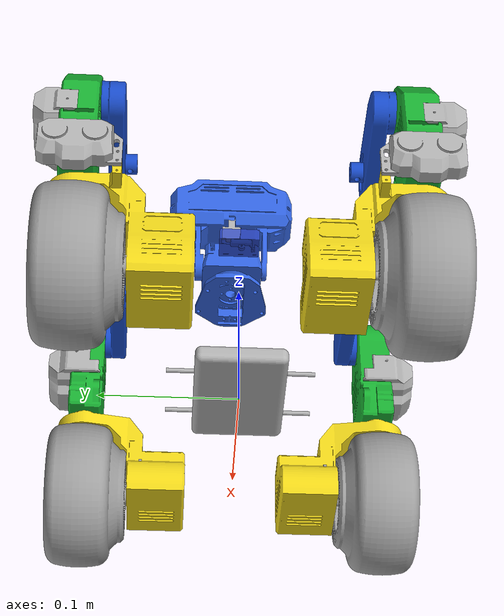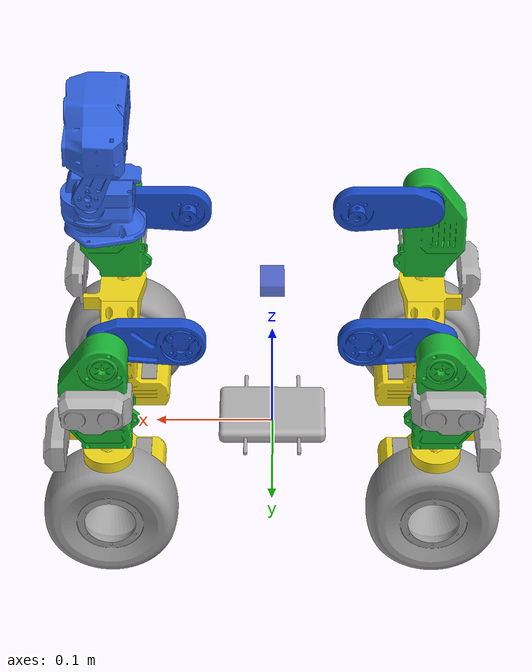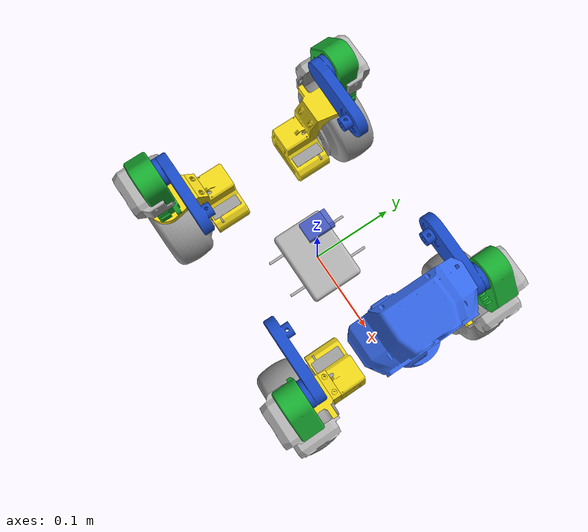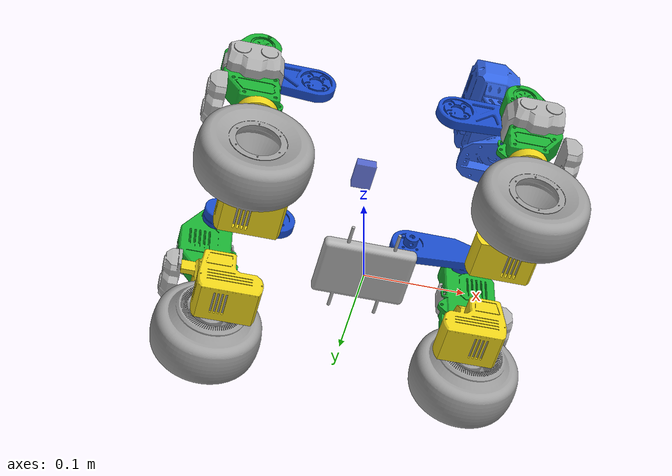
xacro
<?xml version="1.0"?>
<!-- 使用方法：由 robot_description/description.launch.py 展开并发布完整机器人模型。 -->
<robot name="robot" xmlns:xacro="http://www.ros.org/wiki/xacro">

  <!-- mode 只决定 ros2_control 插件；模型、关节和控制接口保持完全一致。 -->
  <xacro:arg name="hardware_plugin" default="mock_components/GenericSystem"/>
  <xacro:arg name="servo_calibration_file" default=""/>
  <xacro:arg name="wheel_calibration_file" default=""/>
  <xacro:arg name="device_candidates" default="/dev/ttyACM0,/dev/ttyACM1,/dev/ttyACM2"/>
  <xacro:arg name="serial_timeout_ms" default="500"/>
  <xacro:arg name="inter_command_delay_ms" default="3"/>
  <xacro:arg name="discovery_retry_count" default="20"/>
  <xacro:arg name="discovery_retry_delay_ms" default="700"/>
  <xacro:arg name="encoder_query_delay_ms" default="20"/>
  <xacro:arg name="command_timeout_ms" default="500"/>
  <xacro:arg name="wheel_diameter" default="0.110"/>
  <xacro:arg name="sonar_lpf_alpha" default="0.2"/>
  <xacro:arg name="sonar_min_valid_mm" default="30"/>
  <xacro:arg name="sonar_max_valid_mm" default="2500"/>

  <!-- 引入xacro文件 -->
  <xacro:include filename="materials.xacro"/>
  <xacro:include filename="lap.xacro"/>
  <xacro:include filename="shin.xacro"/>
  <xacro:include filename="motor.xacro"/>
  <xacro:include filename="wheel.xacro"/>
  <xacro:include filename="radar-front.xacro"/>
  <xacro:include filename="radar-side.xacro"/>
  <xacro:include filename="sonar.xacro"/>
  <xacro:include filename="imu.xacro"/>
  <xacro:include filename="stereo_camera.xacro"/>
  <xacro:include filename="head.xacro"/>
  <xacro:include filename="hardware.xacro"/>

  <!-- 新增：动态获取robot包的绝对路径（核心！） -->
  <xacro:property name="pkg_path" value="$(find robot_description)"/>

  <!-- 基础连杆（作为机器人根节点） -->
  <link name="base_link">
    <!-- 为base_link添加简单可视化（方便在RViz中定位） -->
    <visual>
      <origin xyz="0 0 0" rpy="0 0 0"/>
      <geometry>
        <box size="0 0 0"/> <!-- 小方块作为base_link可视化 -->
      </geometry>
      <xacro:get_material_by_name material_name="pla_gray_light"/>
    </visual>
  </link>

  <!-- 身体链接（保留核心可视化、碰撞、惯性，移除gazebo标签） -->
  <link name="body">
    <!-- 视觉属性 -->
    <visual>
      <origin xyz="0 0 0" rpy="0 0 0"/>
      <geometry>
        <mesh filename="package://robot_description/meshes/body.obj"
              scale="0.001 0.001 0.001"/>
      </geometry>
      <xacro:get_material_by_name material_name="pla_gray_light"/>
    </visual>

    <!-- 碰撞属性（保留，不影响可视化，仅为完整性） -->
    <collision>
      <origin xyz="0 0 0" rpy="0 0 0"/>
      <geometry>
        <mesh filename="package://robot_description/meshes/body.obj"
              scale="0.001 0.001 0.001"/>
      </geometry>
    </collision>

    <!-- 惯性属性（保留，不影响可视化，仅为完整性） -->
    <inertial>
      <origin xyz="0 0 0" rpy="0 0 0"/>
      <mass value="1.0"/>
      <inertia ixx="0.001" ixy="0.0" ixz="0.0"
               iyy="0.001" iyz="0.0"
               izz="0.001"/>
    </inertial>
  </link>

  <!-- 底盘与身体的固定关节（保留） -->
  <joint name="base_body_joint" type="fixed">
    <origin xyz="0 0 0" rpy="0 0 ${pi/2}"/>
    <parent link="base_link"/>
    <child link="body"/>
  </joint>

  <!-- 大腿部分（保留所有lap宏调用，确保关节可被GUI控制） -->
  <!-- 右前大腿 - 原样 -->
  <xacro:lap suffix="fr"
             parent_link="body"
             lower="${-pi/6}" upper="${pi/6}"
             xyz="-0.091 -0.072 0.158"
             rpy="0 0 0"
             mesh_scale="0.001 0.001 0.001"/>

  <!-- 左前大腿 - Y轴镜像 -->
  <xacro:lap suffix="fl"
             parent_link="body"
             lower="${-pi/6}" upper="${pi/6}"
             xyz="0.091 -0.072 0.158"
             rpy="0 0 0"
             mesh_scale="-0.001 0.001 0.001"/> <!-- Y轴镜像 -->

  <!-- 右后大腿 - X轴镜像 -->
  <xacro:lap suffix="rr"
             parent_link="body"
             lower="${-pi/6}" upper="${pi/6}"
             xyz="-0.091 0.072 0.158"
             rpy="0 0 0"
             mesh_scale="0.001 -0.001 0.001"/> <!-- X轴镜像 -->

  <!-- 左后大腿 - X和Y轴都镜像 -->
  <xacro:lap suffix="rl"
             parent_link="body"
             lower="${-pi/6}" upper="${pi/6}"
             xyz="0.091 0.072 0.158"
             rpy="0 0 0"
             mesh_scale="-0.001 -0.001 0.001"/> <!-- X和Y轴镜像 -->

  <!-- 小腿部分 -->
  <!-- 右前小腿 -->
  <xacro:shin suffix="fr"
              parent_link="lap_fr"
              mimic_joint="lap_body_joint_fr"
              xyz="-0.017 -0.060 0"
              rpy="0 0 0"
              mesh_scale="0.001 0.001 0.001"/>

  <!-- 左前小腿（Y轴镜像） -->
  <xacro:shin suffix="fl"
              parent_link="lap_fl"
              mimic_joint="lap_body_joint_fl"
              xyz="0.017 -0.060 0"
              rpy="0 0 0"
              mesh_scale="-0.001 0.001 0.001"/>

  <!-- 右后小腿（X轴镜像） -->
  <xacro:shin suffix="rr"
              parent_link="lap_rr"
              mimic_joint="lap_body_joint_rr"
              xyz="-0.017 0.060 0"
              rpy="0 0 0"
              mesh_scale="0.001 -0.001 0.001"/>

  <!-- 左后小腿（X和Y轴镜像） -->
  <xacro:shin suffix="rl"
              parent_link="lap_rl"
              mimic_joint="lap_body_joint_rl"
              xyz="0.017 0.060 0"
              rpy="0 0 0"
              mesh_scale="-0.001 -0.001 0.001"/>

  <!-- 转向部分 -->
  <xacro:motor suffix="fr"
              parent_link="shin_fr"
              joint_position="front_right"
              xyz="-0.008 0 -0.069"
              rpy="0 0 0"
              mesh_scale="0.001 0.001 0.001"/>
  <xacro:motor suffix="fl"
              parent_link="shin_fl"
              joint_position="front_left"
              xyz="0.008 0 -0.069"
              rpy="0 0 0"
              mesh_scale="-0.001 0.001 0.001"/>
  <xacro:motor suffix="rr"
              parent_link="shin_rr"
              joint_position="rear_right"
              xyz="-0.008 0 -0.069"
              rpy="0 0 0"
              mesh_scale="0.001 -0.001 0.001"/>
  <xacro:motor suffix="rl"
              parent_link="shin_rl"
              joint_position="rear_left"
              xyz="0.008 0 -0.069"
              rpy="0 0 0"
              mesh_scale="-0.001 -0.001 0.001"/>

  <!-- 轮胎部分-->
  <xacro:wheel suffix="fr"
             parent_link="motor_fr"
             joint_position="front_right"
             xyz="0.015 0 -0.085"
             rpy="0 0 0"
             mesh_scale="0.001 0.001 0.001"/>
  <xacro:wheel suffix="fl"
             parent_link="motor_fl"
             joint_position="front_left"
             xyz="-0.015 0 -0.085"
             rpy="0 0 0"
             mesh_scale="-0.001 0.001 0.001"/>
  <xacro:wheel suffix="rr"
             parent_link="motor_rr"
             joint_position="rear_right"
             xyz="0.015 0 -0.085"
             rpy="0 0 0"
             mesh_scale="0.001 -0.001 0.001"/>
  <xacro:wheel suffix="rl"
             parent_link="motor_rl"
             joint_position="rear_left"
             xyz="-0.015 0 -0.085"
             rpy="0 0 0"
             mesh_scale="-0.001 -0.001 0.001"/>

  <!-- 前超声波传感器-->
  <xacro:radar-front suffix="fr"
              parent_link="motor_fr"
              xyz="0 -0.037 -0.011"
              rpy="0 0 0"
              mesh_scale="0.001 0.001 0.001"/>
  <xacro:radar-front suffix="fl"
              parent_link="motor_fl"
              xyz="0 -0.037 -0.011"
              rpy="0 0 0"
              mesh_scale="-0.001 0.001 0.001"/>
  <xacro:radar-front suffix="rr"
              parent_link="motor_rr"
              xyz="0 0.037 -0.011"
              rpy="0 0 0"
              mesh_scale="0.001 -0.001 0.001"/>
  <xacro:radar-front suffix="rl"
              parent_link="motor_rl"
              xyz="0 0.037 -0.011"
              rpy="0 0 0"
              mesh_scale="-0.001 -0.001 0.001"/>

  <!-- 侧超声波传感器-->
  <xacro:radar-side suffix="fr"
              parent_link="shin_fr"
              xyz="-0.026 -0.009 -0.035"
              rpy="0 0 0"
              mesh_scale="0.001 0.001 0.001"/>
  <xacro:radar-side suffix="fl"
              parent_link="shin_fl"
              xyz="0.026 -0.009 -0.035"
              rpy="0 0 0"
              mesh_scale="-0.001 0.001 0.001"/>
  <xacro:radar-side suffix="rr"
              parent_link="shin_rr"
              xyz="-0.026 0.009 -0.035"
              rpy="0 0 0"
              mesh_scale="0.001 -0.001 0.001"/>
  <xacro:radar-side suffix="rl"
              parent_link="shin_rl"
              xyz="0.026 0.009 -0.035"
              rpy="0 0 0"
              mesh_scale="-0.001 -0.001 0.001"/>

  <!-- 实机固定超声波：前3、后3、左1、右1，位置来自 hw_ctrl/chassis.json。 -->
  <xacro:sonar_frame name="sonar_fl" parent="base_link" xyz="0.201 0.058 0.03" yaw="${pi/6}"/>
  <xacro:sonar_frame name="sonar_fc" parent="base_link" xyz="0.215 0 0.03" yaw="0"/>
  <xacro:sonar_frame name="sonar_fr" parent="base_link" xyz="0.201 -0.058 0.03" yaw="${-pi/6}"/>
  <xacro:sonar_frame name="sonar_right" parent="base_link" xyz="0 -0.142 0.03" yaw="${-pi/2}"/>
  <xacro:sonar_frame name="sonar_rr" parent="base_link" xyz="-0.190 -0.062 0.03" yaw="${-2*pi/3}"/>
  <xacro:sonar_frame name="sonar_rc" parent="base_link" xyz="-0.200 0 0.03" yaw="${pi}"/>
  <xacro:sonar_frame name="sonar_rl" parent="base_link" xyz="-0.190 0.062 0.03" yaw="${2*pi/3}"/>
  <xacro:sonar_frame name="sonar_left" parent="base_link" xyz="0 0.142 0.03" yaw="${pi/2}"/>

  <!--  插入 IMU（修改安装位置即可） -->
  <xacro:imu
    parent_link="body"
    x="0.0"
    y="0.0"
    z="0.15"
    roll="0"
    pitch="0"
    yaw="0"
  />

  <!--
    两自由度头部安装在 body 前方中线。当前位姿依据参考图和网格边界设置，
    实机装配完成后应测量安装面并校准 xyz/rpy。
  -->
  <xacro:head parent_link="body"
              xyz="0 -0.145 0.205"
              rpy="0 0 0"
              mesh_scale="0.001 0.001 0.001"/>

  <!--
    双目摄像头安装在头部上半部分内部；两个 OBJ 共享局部装配原点，
    相机镜头中心与面罩的左右孔重合。
  -->
  <xacro:stereo_camera parent_link="head_pitch_link"
                       xyz="0 0 0"
                       rpy="0 0 0"
                       baseline="0.061145213"/>

  <xacro:hardware hardware_plugin="$(arg hardware_plugin)"
                  servo_calibration_file="$(arg servo_calibration_file)"
                  wheel_calibration_file="$(arg wheel_calibration_file)"
                  device_candidates="$(arg device_candidates)"
                  serial_timeout_ms="$(arg serial_timeout_ms)"
                  inter_command_delay_ms="$(arg inter_command_delay_ms)"
                  discovery_retry_count="$(arg discovery_retry_count)"
                  discovery_retry_delay_ms="$(arg discovery_retry_delay_ms)"
                  encoder_query_delay_ms="$(arg encoder_query_delay_ms)"
                  command_timeout_ms="$(arg command_timeout_ms)"
                  wheel_diameter="$(arg wheel_diameter)"
                  sonar_lpf_alpha="$(arg sonar_lpf_alpha)"
                  sonar_min_valid_mm="$(arg sonar_min_valid_mm)"
                  sonar_max_valid_mm="$(arg sonar_max_valid_mm)"/>

</robot>

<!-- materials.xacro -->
<robot xmlns:xacro="http://www.ros.org/wiki/xacro" name="robot_materials_3dprint">

  <!--
    3D打印机器人材质定义
    包含PLA/ABS/TPU等常见3D打印材料的颜色
  -->

  <!-- ========== PLA材质系列 ========== -->
  <!-- 亮色系列 (bright colors) -->
  <material name="pla_bright_red">
    <color rgba="0.9 0.2 0.2 1.0"/>  <!-- 鲜红色 -->
  </material>

  <material name="pla_blue">
    <color rgba="0.2 0.4 0.9 1.0"/>  <!-- 蓝色 -->
  </material>

  <material name="pla_green">
    <color rgba="0.2 0.8 0.3 1.0"/>  <!-- 绿色 -->
  </material>

  <material name="pla_yellow">
    <color rgba="1.0 0.9 0.2 1.0"/>  <!-- 黄色 -->
  </material>

  <material name="pla_orange">
    <color rgba="1.0 0.5 0.2 1.0"/>  <!-- 橙色 -->
  </material>

  <material name="pla_purple">
    <color rgba="0.6 0.2 0.8 1.0"/>  <!-- 紫色 -->
  </material>

  <material name="pla_pink">
    <color rgba="1.0 0.6 0.8 1.0"/>  <!-- 粉色 -->
  </material>

  <material name="pla_cyan">
    <color rgba="0.2 0.8 1.0 1.0"/>  <!-- 青色 -->
  </material>

  <!-- PLA自然色系列 -->
  <material name="pla_white">
    <color rgba="0.95 0.95 0.95 1.0"/>  <!-- 白色，略带暖色调 -->
  </material>

  <material name="pla_black">
    <color rgba="0.15 0.15 0.15 1.0"/>  <!-- 黑色，不是纯黑 -->
  </material>

  <material name="pla_gray_light">
    <color rgba="0.7 0.7 0.7 1.0"/>  <!-- 浅灰色 -->
  </material>

  <material name="pla_gray_dark">
    <color rgba="0.3 0.3 0.3 1.0"/>  <!-- 深灰色 -->
  </material>

  <material name="pla_silver">
    <color rgba="0.8 0.8 0.85 1.0"/>  <!-- 银色效果 -->
  </material>

  <!-- PLA半透明系列 -->
  <material name="pla_trans_red">
    <color rgba="0.9 0.2 0.2 0.7"/>  <!-- 半透明红 -->
  </material>

  <material name="pla_trans_blue">
    <color rgba="0.2 0.4 0.9 0.7"/>  <!-- 半透明蓝 -->
  </material>

  <material name="pla_trans_green">
    <color rgba="0.2 0.8 0.3 0.7"/>  <!-- 半透明绿 -->
  </material>

  <material name="pla_trans_clear">
    <color rgba="0.95 0.95 0.95 0.3"/>  <!-- 透明 -->
  </material>

  <!-- ========== ABS材质系列 ========== -->
  <!-- ABS通常颜色更鲜艳 -->
  <material name="abs_red">
    <color rgba="0.85 0.1 0.1 1.0"/>  <!-- ABS红色 -->
  </material>

  <material name="abs_blue">
    <color rgba="0.1 0.3 0.8 1.0"/>  <!-- ABS蓝色 -->
  </material>

  <material name="abs_green">
    <color rgba="0.1 0.7 0.2 1.0"/>  <!-- ABS绿色 -->
  </material>

  <material name="abs_yellow">
    <color rgba="0.95 0.85 0.1 1.0"/>  <!-- ABS黄色 -->
  </material>

  <!-- ABS工程色 -->
  <material name="abs_black">
    <color rgba="0.08 0.08 0.08 1.0"/>  <!-- ABS黑色，更黑 -->
  </material>

  <material name="abs_gray">
    <color rgba="0.4 0.4 0.4 1.0"/>  <!-- ABS灰色 -->
  </material>

  <material name="abs_ivory">
    <color rgba="0.98 0.96 0.9 1.0"/>  <!-- ABS象牙白 -->
  </material>

  <!-- ========== TPU/柔性材料系列 ========== -->
  <material name="tpu_black">
    <color rgba="0.12 0.12 0.12 1.0"/>  <!-- TPU黑色，用于轮子 -->
  </material>

  <material name="tpu_white">
    <color rgba="0.9 0.9 0.9 1.0"/>  <!-- TPU白色 -->
  </material>

  <material name="tpu_red">
    <color rgba="0.8 0.2 0.2 1.0"/>  <!-- TPU红色 -->
  </material>

  <material name="tpu_blue">
    <color rgba="0.2 0.3 0.7 1.0"/>  <!-- TPU蓝色 -->
  </material>

  <material name="tpu_translucent">
    <color rgba="0.6 0.6 0.6 0.5"/>  <!-- TPU半透明 -->
  </material>

  <!-- ========== 特殊效果材质 ========== -->
  <!-- 金属效果 (通过颜色模拟) -->
  <material name="metal_aluminum">
    <color rgba="0.9 0.9 0.92 1.0"/>  <!-- 铝色 -->
  </material>

  <material name="metal_steel">
    <color rgba="0.65 0.67 0.72 1.0"/>  <!-- 钢色 -->
  </material>

  <material name="metal_bronze">
    <color rgba="0.8 0.5 0.2 1.0"/>  <!-- 青铜色 -->
  </material>

  <material name="metal_copper">
    <color rgba="0.85 0.54 0.4 1.0"/>  <!-- 铜色 -->
  </material>

  <material name="metal_gold">
    <color rgba="1.0 0.84 0.0 1.0"/>  <!-- 金色 -->
  </material>

  <material name="metal_silver">
    <color rgba="0.75 0.75 0.8 1.0"/>  <!-- 银色 -->
  </material>

  <!-- 碳纤维效果 -->
  <material name="carbon_fiber_black">
    <color rgba="0.05 0.05 0.05 1.0"/>  <!-- 碳纤维黑 -->
  </material>

  <material name="carbon_fiber_gray">
    <color rgba="0.2 0.2 0.2 1.0"/>  <!-- 碳纤维灰 -->
  </material>

  <!-- 木质效果 -->
  <material name="wood_dark">
    <color rgba="0.4 0.3 0.2 1.0"/>  <!-- 深木色 -->
  </material>

  <material name="wood_light">
    <color rgba="0.8 0.7 0.5 1.0"/>  <!-- 浅木色 -->
  </material>

  <material name="wood_bamboo">
    <color rgba="0.9 0.85 0.7 1.0"/>  <!-- 竹色 -->
  </material>

  <!-- ========== 功能区分色 ========== -->
  <!-- 结构件 -->
  <material name="structural_black">
    <color rgba="0.1 0.1 0.1 1.0"/>
  </material>

  <material name="structural_gray">
    <color rgba="0.5 0.5 0.5 1.0"/>
  </material>

  <!-- 运动部件 -->
  <material name="motion_red">
    <color rgba="0.9 0.2 0.2 1.0"/>
  </material>

  <material name="motion_blue">
    <color rgba="0.2 0.4 0.9 1.0"/>
  </material>

  <!-- 连接件 -->
  <material name="connector_yellow">
    <color rgba="1.0 0.9 0.2 1.0"/>
  </material>

  <material name="connector_orange">
    <color rgba="1.0 0.5 0.2 1.0"/>
  </material>

  <!-- 电子部件 -->
  <material name="electronics_green">
    <color rgba="0.2 0.6 0.2 1.0"/>
  </material>

  <!-- 轮子/轮胎 -->
  <material name="tire_black">
    <color rgba="0.05 0.05 0.05 1.0"/>
  </material>

  <material name="tire_gray">
    <color rgba="0.62 0.62 0.62 1.0"/>
  </material>

  <!-- ========== 主题配色方案 ========== -->
  <!-- 机器人主题1：科技蓝 -->
  <material name="theme_tech_blue_main">
    <color rgba="0.1 0.3 0.6 1.0"/>
  </material>

  <material name="theme_tech_blue_accent">
    <color rgba="0.2 0.5 0.9 1.0"/>
  </material>

  <material name="theme_tech_blue_detail">
    <color rgba="0.8 0.9 1.0 1.0"/>
  </material>

  <!-- 机器人主题2：火焰红 -->
  <material name="theme_fire_red_main">
    <color rgba="0.6 0.1 0.1 1.0"/>
  </material>

  <material name="theme_fire_red_accent">
    <color rgba="0.9 0.3 0.2 1.0"/>
  </material>

  <material name="theme_fire_red_detail">
    <color rgba="1.0 0.8 0.6 1.0"/>
  </material>

  <!-- 机器人主题3：森林绿 -->
  <material name="theme_forest_green_main">
    <color rgba="0.1 0.4 0.2 1.0"/>
  </material>

  <material name="theme_forest_green_accent">
    <color rgba="0.3 0.7 0.3 1.0"/>
  </material>

  <material name="theme_forest_green_detail">
    <color rgba="0.8 0.9 0.7 1.0"/>
  </material>

  <!-- ========== 常用组合 ========== -->
  <!-- 四腿机器人颜色组合 -->
  <material name="leg_rf_color">
    <color rgba="0.9 0.2 0.2 1.0"/>  <!-- 右前：红色 -->
  </material>

  <material name="leg_lf_color">
    <color rgba="0.2 0.4 0.9 1.0"/>  <!-- 左前：蓝色 -->
  </material>

  <material name="leg_rb_color">
    <color rgba="0.2 0.8 0.3 1.0"/>  <!-- 右后：绿色 -->
  </material>

  <material name="leg_lb_color">
    <color rgba="1.0 0.9 0.2 1.0"/>  <!-- 左后：黄色 -->
  </material>

  <!-- ========== 工具函数 ========== -->

  <!-- 根据部件类型获取推荐材质 -->
  <xacro:macro name="get_recommended_material" params="component_type">
    <xacro:if value="${component_type == 'body'}">
      <material name="pla_gray_dark"/>
    </xacro:if>

    <xacro:if value="${component_type == 'lap'}">
      <material name="pla_bright_red"/>
    </xacro:if>

    <xacro:if value="${component_type == 'shank'}">
      <material name="pla_blue"/>
    </xacro:if>

    <xacro:if value="${component_type == 'wheel'}">
      <material name="tpu_black"/>
    </xacro:if>

    <xacro:if value="${component_type == 'joint'}">
      <material name="metal_aluminum"/>
    </xacro:if>

    <xacro:if value="${component_type == 'connector'}">
      <material name="connector_yellow"/>
    </xacro:if>

    <xacro:if value="${component_type == 'electronics'}">
      <material name="electronics_green"/>
    </xacro:if>

    <!-- 默认材质 -->
    <xacro:unless value="${component_type in ['body', 'lap', 'shank', 'wheel', 'joint', 'connector', 'electronics']}">
      <material name="pla_gray_light"/>
    </xacro:unless>
  </xacro:macro>

  <!-- 根据腿的位置获取颜色 -->
  <xacro:macro name="get_leg_color" params="position">
    <xacro:if value="${position == 'rf'}">  <!-- 右前 -->
      <material name="leg_rf_color"/>
    </xacro:if>

    <xacro:if value="${position == 'lf'}">  <!-- 左前 -->
      <material name="leg_lf_color"/>
    </xacro:if>

    <xacro:if value="${position == 'rb'}">  <!-- 右后 -->
      <material name="leg_rb_color"/>
    </xacro:if>

    <xacro:if value="${position == 'lb'}">  <!-- 左后 -->
      <material name="leg_lb_color"/>
    </xacro:if>
  </xacro:macro>

  <!-- 简单获取材质（通过名称） -->
  <xacro:macro name="get_material_by_name" params="material_name">
    <material name="${material_name}"/>
  </xacro:macro>

  <!-- 获取材质（通过名称和透明度） -->
  <xacro:macro name="get_material_with_alpha" params="material_name alpha:=1.0">
    <xacro:if value="${material_name == 'pla_bright_red'}">
      <color rgba="0.9 0.2 0.2 ${alpha}"/>
    </xacro:if>
    <!-- 可以继续添加其他材质... -->
    <xacro:unless value="${material_name == 'pla_bright_red'}">
      <material name="${material_name}"/>
    </xacro:unless>
  </xacro:macro>

</robot>

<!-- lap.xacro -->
<!-- 使用方法：由 robot_description/urdf/robot.xacro 组合，通常不要单独启动。 -->
<robot xmlns:xacro="http://www.ros.org/wiki/xacro" name="lap_module">

  <!-- 大腿模块的XACRO宏定义 -->
  <xacro:macro name="lap"
               params="suffix parent_link lower:='-0.785398' upper:='0.785398'
                       xyz:='0 0 0'
                       rpy:='0 0 0'
                       mesh_scale:='0.001 0.001 0.001'">

    <!-- 大腿连杆 (link) -->
    <link name="lap_${suffix}">
      <!-- 视觉属性 -->
      <visual>
        <origin xyz="0 0 0" rpy="0 0 0"/>
        <geometry>
          <mesh filename="package://robot_description/meshes/lap-rf.obj"
                scale="${mesh_scale}"/>
        </geometry>
        <xacro:get_material_by_name material_name="abs_blue"/>
      </visual>

      <!-- 碰撞属性 -->
      <collision>
        <origin xyz="0 0 0" rpy="0 0 0"/>
        <geometry>
          <mesh filename="package://robot_description/meshes/lap-rf.obj"
                scale="${mesh_scale}"/>
        </geometry>
      </collision>

      <!-- 惯性属性 -->
      <inertial>
        <origin xyz="0 0 0" rpy="0 0 0"/>
        <mass value="1.0"/>
        <inertia ixx="0.001" ixy="0.0" ixz="0.0"
                 iyy="0.001" iyz="0.0"
                 izz="0.001"/>
      </inertial>
    </link>

    <!-- 大腿与身体的连接关节 (joint)-->
    <joint name="lap_${parent_link}_joint_${suffix}" type="revolute">
      <!-- 关节原点相对于父链接的位置和方向 -->
      <origin xyz="${xyz}" rpy="${rpy}"/>
      <parent link="${parent_link}"/>
      <child link="lap_${suffix}"/>

      <!-- 旋转轴定义 (绕X轴旋转) -->
      <axis xyz="1 0 0"/>

      <limit lower="${lower}" upper="${upper}" effort="10.0" velocity="1.0"/>

      <dynamics damping="0.1" friction="0.0"/>
    </joint>

  </xacro:macro>

</robot>

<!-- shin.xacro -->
<!-- 使用方法：由 robot_description/urdf/robot.xacro 组合，通常不要单独启动。 -->
<robot xmlns:xacro="http://www.ros.org/wiki/xacro" name="shin_module">

  <xacro:macro name="shin"
               params="suffix parent_link
                       xyz:='0 0 0'
                       rpy:='0 0 0'
                       mesh_scale:='0.001 0.001 0.001'">

    <!-- 小腿连杆 -->
    <link name="shin_${suffix}">
      <visual>
        <origin xyz="0 0 0" rpy="0 0 0"/>
        <geometry>
          <mesh filename="package://robot_description/meshes/shin-rf.obj"
                scale="${mesh_scale}"/>
        </geometry>
        <xacro:get_material_by_name material_name="abs_green"/>
      </visual>

      <collision>
        <origin xyz="0 0 0" rpy="0 0 0"/>
        <geometry>
          <mesh filename="package://robot_description/meshes/shin-rf.obj"
                scale="${mesh_scale}"/>
        </geometry>
      </collision>

      <inertial>
        <origin xyz="0 0 0" rpy="0 0 0"/>
        <mass value="0.5"/>
        <inertia ixx="0.0005" ixy="0.0" ixz="0.0"
                 iyy="0.0005" iyz="0.0"
                 izz="0.0005"/>
      </inertial>
    </link>

    <!-- 小腿与大腿的连接关节（膝盖关节） -->
    <joint name="shin_${parent_link}_joint_${suffix}" type="revolute">
      <origin xyz="${xyz}" rpy="${rpy}"/>
      <parent link="${parent_link}"/>
      <child link="shin_${suffix}"/>
      <!-- 假设膝盖绕 X 轴旋转，请根据实际模型调整 -->
      <axis xyz="1 0 0"/>
      <limit lower="-0.785" upper="0.785" effort="5.0" velocity="1.0"/>
      <dynamics damping="0.05" friction="0.0"/>
    </joint>

  </xacro:macro>

</robot>

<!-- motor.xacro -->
<robot xmlns:xacro="http://www.ros.org/wiki/xacro" name="motor_module">

  <xacro:macro name="motor"
               params="suffix parent_link joint_position
                       xyz:='0 0 0'
                       rpy:='0 0 0'
                       mesh_scale:='0.001 0.001 0.001'">

    <!-- 转向电机连杆 -->
    <link name="motor_${suffix}">
      <visual>
        <origin xyz="0 0 0" rpy="0 0 0"/>
        <geometry>
          <mesh filename="package://robot/meshes/motor-rf.obj"
                scale="${mesh_scale}"/>
        </geometry>
        <!-- 使用蓝色材质，需确保材质文件已包含 -->
        <xacro:get_material_by_name material_name="abs_yellow"/>
      </visual>

      <collision>
        <origin xyz="0 0 0" rpy="0 0 0"/>
        <geometry>
          <mesh filename="package://robot/meshes/motor-rf.obj"
                scale="${mesh_scale}"/>
        </geometry>
      </collision>

      <inertial>
        <origin xyz="0 0 0" rpy="0 0 0"/>
        <mass value="0.5"/>
        <inertia ixx="0.0005" ixy="0.0" ixz="0.0"
                 iyy="0.0005" iyz="0.0"
                 izz="0.0005"/>
      </inertial>
    </link>

    <!-- 转向关节（绕 Z 轴旋转，左右各 90 度） -->
    <joint name="${joint_position}_steer_joint" type="revolute">
      <origin xyz="${xyz}" rpy="${rpy}"/>
      <parent link="${parent_link}"/>
      <child link="motor_${suffix}"/>
      <!-- 假设转向绕 Z 轴，根据实际模型可调整为其他轴 -->
      <axis xyz="0 0 1"/>
      <!-- 运动范围：-90° 到 90°（-1.57 到 1.57 弧度） -->
      <limit lower="-1.57" upper="1.57" effort="5.0" velocity="1.0"/>
      <dynamics damping="0.05" friction="0.0"/>
    </joint>

  </xacro:macro>

</robot>

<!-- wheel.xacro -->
<robot xmlns:xacro="http://www.ros.org/wiki/xacro" name="wheel_module">

  <xacro:macro name="wheel"
               params="suffix parent_link joint_position
                       xyz:='0 0 0'
                       rpy:='0 0 0'
                       mesh_scale:='0.001 0.001 0.001'">

    <!-- 轮子连杆 -->
    <link name="wheel_${suffix}">
      <visual>
        <origin xyz="0 0 0" rpy="0 0 0"/>
        <geometry>
          <mesh filename="package://robot/meshes/wheel-rf.obj"
                scale="${mesh_scale}"/>
        </geometry>
        <!-- 使用浅灰色轮胎材质，便于 Foxglove/RViz 观察轮子姿态。 -->
        <xacro:get_material_by_name material_name="tire_gray"/>
      </visual>

      <collision>
        <origin xyz="0 0 0" rpy="0 0 0"/>
        <geometry>
          <mesh filename="package://robot/meshes/wheel-rf.obj"
                scale="${mesh_scale}"/>
        </geometry>
      </collision>

      <inertial>
        <origin xyz="0 0 0" rpy="0 0 0"/>
        <mass value="0.3"/>
        <!-- 简化惯性矩，根据实际模型调整 -->
        <inertia ixx="0.0003" ixy="0.0" ixz="0.0"
                 iyy="0.0005" iyz="0.0"
                 izz="0.0003"/>
      </inertial>
    </link>

    <!-- 轮子旋转关节（连续旋转） -->
    <joint name="${joint_position}_wheel_joint" type="continuous">
      <origin xyz="${xyz}" rpy="${rpy}"/>
      <parent link="${parent_link}"/>
      <child link="wheel_${suffix}"/>
      <!-- 假设轮子绕 X 轴旋转，请根据实际模型调整 -->
      <axis xyz="1 0 0"/>
      <!-- 连续关节无限制，但可设置动力学参数 -->
      <dynamics damping="0.02" friction="0.0"/>
    </joint>

  </xacro:macro>

</robot>

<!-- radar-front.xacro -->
<robot xmlns:xacro="http://www.ros.org/wiki/xacro" name="radar-front_module">

  <xacro:macro name="radar-front"
               params="suffix parent_link
                       xyz:='0 0 0'
                       rpy:='0 0 0'
                       mesh_scale:='0.001 0.001 0.001'">

    <!-- 传感器连杆 -->
    <link name="radar-front_${suffix}">
      <visual>
        <origin xyz="0 0 0" rpy="0 0 0"/>
        <geometry>
          <mesh filename="package://robot/meshes/radar-front-rf.obj"
                scale="${mesh_scale}"/>
        </geometry>
        <!-- 灰色 -->
        <xacro:get_material_by_name material_name="pla_gray_light"/>
      </visual>

      <collision>
        <origin xyz="0 0 0" rpy="0 0 0"/>
        <geometry>
          <mesh filename="package://robot/meshes/radar-front-rf.obj"
                scale="${mesh_scale}"/>
        </geometry>
      </collision>

      <inertial>
        <origin xyz="0 0 0" rpy="0 0 0"/>
        <mass value="0.02"/>  <!-- 假设20克 -->
        <inertia ixx="1e-6" ixy="0.0" ixz="0.0"
                 iyy="1e-6" iyz="0.0"
                 izz="1e-6"/>
      </inertial>

      <sensor name="ultrasonic_${suffix}" type="ultrasonic">
        <!-- 绑定超声波自身的连杆 -->
        <parent_link name="radar-front_${suffix}"/>
        <!-- 数据刷新频率（HC-SR04标准频率） -->
        <update_rate>10</update_rate>
        <!-- 超声波探测锥形区域 -->
        <ray>
          <!-- 水平视场角：HC-SR04 是 ±15°（总30°锥形） -->
          <horizontal samples="1" min_angle="-0.2618" max_angle="0.2618"/>
          <!-- 垂直视场角：和水平一致（超声波是圆锥探测） -->
          <vertical samples="1" min_angle="-0.2618" max_angle="0.2618"/>
        </ray>
        <!-- HC-SR04 真实测距范围（核心！） -->
        <range>
          <min>0.02</min>    <!-- 最小测2厘米 -->
          <max>4.0</max>     <!-- 最大测4米 -->
          <resolution>0.01</resolution> <!-- 精度1厘米 -->
        </range>
      </sensor>
    </link>

    <!-- 固定关节连接到父链接 -->
    <joint name="radar-front_${parent_link}_joint_${suffix}" type="fixed">
      <origin xyz="${xyz}" rpy="${rpy}"/>
      <parent link="${parent_link}"/>
      <child link="radar-front_${suffix}"/>
    </joint>

  </xacro:macro>

</robot>

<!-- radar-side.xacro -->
<robot xmlns:xacro="http://www.ros.org/wiki/xacro" name="radar-side_module">

  <xacro:macro name="radar-side"
               params="suffix parent_link
                       xyz:='0 0 0'
                       rpy:='0 0 0'
                       mesh_scale:='0.001 0.001 0.001'">

    <!-- 传感器连杆 -->
    <link name="radar-side_${suffix}">
      <visual>
        <origin xyz="0 0 0" rpy="0 0 0"/>
        <geometry>
          <mesh filename="package://robot/meshes/radar-side-rf.obj"
                scale="${mesh_scale}"/>
        </geometry>
        <!-- 灰色 -->
        <xacro:get_material_by_name material_name="pla_gray_light"/>
      </visual>

      <collision>
        <origin xyz="0 0 0" rpy="0 0 0"/>
        <geometry>
          <mesh filename="package://robot/meshes/radar-side-rf.obj"
                scale="${mesh_scale}"/>
        </geometry>
      </collision>

      <inertial>
        <origin xyz="0 0 0" rpy="0 0 0"/>
        <mass value="0.02"/>  <!-- 假设20克 -->
        <inertia ixx="1e-6" ixy="0.0" ixz="0.0"
                 iyy="1e-6" iyz="0.0"
                 izz="1e-6"/>
      </inertial>

      <sensor name="ultrasonic_${suffix}" type="ultrasonic">
        <!-- 绑定超声波自身的连杆 -->
        <parent_link name="radar-side_${suffix}"/>
        <!-- 数据刷新频率（HC-SR04标准频率） -->
        <update_rate>10</update_rate>
        <!-- 超声波探测锥形区域 -->
        <ray>
          <!-- 水平视场角：HC-SR04 是 ±15°（总30°锥形） -->
          <horizontal samples="1" min_angle="-0.2618" max_angle="0.2618"/>
          <!-- 垂直视场角：和水平一致（超声波是圆锥探测） -->
          <vertical samples="1" min_angle="-0.2618" max_angle="0.2618"/>
        </ray>
        <!-- HC-SR04 真实测距范围（核心！） -->
        <range>
          <min>0.02</min>    <!-- 最小测2厘米 -->
          <max>4.0</max>     <!-- 最大测4米 -->
          <resolution>0.01</resolution> <!-- 精度1厘米 -->
        </range>
      </sensor>
    </link>

    <!-- 固定关节连接到父链接 -->
    <joint name="radar-side_${parent_link}_joint_${suffix}" type="fixed">
      <origin xyz="${xyz}" rpy="${rpy}"/>
      <parent link="${parent_link}"/>
      <child link="radar-side_${suffix}"/>
    </joint>

  </xacro:macro>

</robot>

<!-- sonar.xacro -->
<!-- 使用方法：由 robot.xacro 按 chassis.json 的实机 3+3+1+1 布局创建超声波坐标系。 -->
<robot xmlns:xacro="http://www.ros.org/wiki/xacro" name="sonar_frames">
  <xacro:macro name="sonar_frame" params="name parent xyz yaw">
    <link name="${name}"/>
    <joint name="${name}_joint" type="fixed">
      <origin xyz="${xyz}" rpy="0 0 ${yaw}"/>
      <parent link="${parent}"/>
      <child link="${name}"/>
    </joint>
  </xacro:macro>
</robot>

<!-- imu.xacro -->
<!-- 使用方法：由 robot_description/urdf/robot.xacro 组合，通常不要单独启动。 -->
<robot xmlns:xacro="http://www.ros.org/wiki/xacro">

  <xacro:macro name="imu" params="parent_link x:=0 y:=0 z:=0 roll:=0 pitch:=0 yaw:=0">

    <!-- IMU 链路 -->
    <link name="imu_link">
      <!-- 惯性参数（小型模块，轻量化设置） -->
      <inertial>
        <mass value="0.01"/>
        <origin xyz="0 0 0" rpy="0 0 0"/>
        <inertia ixx="0.0001" ixy="0" ixz="0" iyy="0.0001" iyz="0" izz="0.0001"/>
      </inertial>

      <!-- 可视化外壳 -->
      <visual>
        <origin xyz="0 0 0" rpy="0 0 0"/>
        <geometry>
          <box size="0.03 0.02 0.01"/>
        </geometry>
        <material name="blue">
          <color rgba="0.2 0.3 0.8 0.8"/>
        </material>
      </visual>

      <!-- 碰撞 -->
      <collision>
        <origin xyz="0 0 0" rpy="0 0 0"/>
        <geometry>
          <box size="0.03 0.02 0.01"/>
        </geometry>
      </collision>
    </link>

    <!-- IMU 安装关节 -->
    <joint name="imu_joint" type="fixed">
      <parent link="${parent_link}"/>
      <child link="imu_link"/>
      <origin xyz="${x} ${y} ${z}" rpy="${roll} ${pitch} ${yaw}"/>
    </joint>

  </xacro:macro>
</robot>

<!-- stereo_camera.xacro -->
<robot xmlns:xacro="http://www.ros.org/wiki/xacro">
  <!--
    双目摄像头 OBJ 与 head_pitch_link 使用相同的装配坐标原点。
    网格镜头中心为 x=±30.5 mm、y=-16.5 mm、z=46.8 mm，孔距为 61 mm。
    optical frame 继续使用 USB Camera 01.00.00 标定得到的精确基线。
  -->
  <xacro:macro name="stereo_camera"
               params="parent_link
                       xyz:='0 0 0'
                       rpy:='0 0 0'
                       baseline:=0.061145213
                       mesh_scale:='0.001 0.001 0.001'
                       lens_y:=-0.0165
                       lens_z:=0.0468">
    <link name="stereo_camera_link">
      <visual>
        <origin xyz="0 0 0" rpy="0 0 0"/>
        <geometry>
          <mesh filename="package://robot/meshes/stereo_camera.obj"
                scale="${mesh_scale}"/>
        </geometry>
        <xacro:get_material_by_name material_name="pla_gray_light"/>
      </visual>
      <collision>
        <origin xyz="0 0 0" rpy="0 0 0"/>
        <geometry>
          <mesh filename="package://robot/meshes/stereo_camera.obj"
                scale="${mesh_scale}"/>
        </geometry>
      </collision>
      <inertial>
        <origin xyz="0 -0.0085 0.0468" rpy="0 0 0"/>
        <mass value="0.08"/>
        <inertia ixx="0.000015" ixy="0.0" ixz="0.0"
                 iyy="0.000045" iyz="0.0" izz="0.000050"/>
      </inertial>
    </link>

    <joint name="stereo_camera_joint" type="fixed">
      <parent link="${parent_link}"/>
      <child link="stereo_camera_link"/>
      <origin xyz="${xyz}" rpy="${rpy}"/>
    </joint>

    <!-- 头部局部 +X 为车体左侧，两个镜头沿 X 轴排列并朝向车头 -Y。 -->
    <link name="stereo_left_camera_frame"/>
    <joint name="stereo_left_camera_joint" type="fixed">
      <parent link="stereo_camera_link"/>
      <child link="stereo_left_camera_frame"/>
      <origin xyz="${baseline / 2.0} ${lens_y} ${lens_z}"
              rpy="0 0 ${-pi / 2.0}"/>
    </joint>
    <link name="stereo_left_optical_frame"/>
    <joint name="stereo_left_optical_joint" type="fixed">
      <parent link="stereo_left_camera_frame"/>
      <child link="stereo_left_optical_frame"/>
      <origin xyz="0 0 0" rpy="${-pi / 2.0} 0 ${-pi / 2.0}"/>
    </joint>

    <link name="stereo_right_camera_frame"/>
    <joint name="stereo_right_camera_joint" type="fixed">
      <parent link="stereo_camera_link"/>
      <child link="stereo_right_camera_frame"/>
      <origin xyz="${-baseline / 2.0} ${lens_y} ${lens_z}"
              rpy="0 0 ${-pi / 2.0}"/>
    </joint>
    <link name="stereo_right_optical_frame"/>
    <joint name="stereo_right_optical_joint" type="fixed">
      <parent link="stereo_right_camera_frame"/>
      <child link="stereo_right_optical_frame"/>
      <origin xyz="0 0 0" rpy="${-pi / 2.0} 0 ${-pi / 2.0}"/>
    </joint>
  </xacro:macro>
</robot>

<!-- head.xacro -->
<!-- 使用方法：由 robot_description/urdf/robot.xacro 组合，通常不要单独启动。 -->
<robot xmlns:xacro="http://www.ros.org/wiki/xacro" name="head_module">

  <!--
    两自由度头部模块：下部绕 Z 轴控制 yaw，上部绕 X 轴控制 pitch。
    OBJ 使用毫米建模，因此默认缩放为 0.001；安装位姿由调用处相对 body 设置。
  -->
  <xacro:macro name="head"
               params="parent_link
                       xyz:='0 0 0'
                       rpy:='0 0 0'
                       mesh_scale:='0.001 0.001 0.001'
                       pitch_joint_xyz:='0 0 0.0478'">

    <!-- 头部下半部分：随 yaw 关节转动。 -->
    <link name="head_yaw_link">
      <visual>
        <origin xyz="0 0 0" rpy="0 0 0"/>
        <geometry>
          <mesh filename="package://robot_description/meshes/yaw_camera.obj"
                scale="${mesh_scale}"/>
        </geometry>
        <xacro:get_material_by_name material_name="pla_blue"/>
      </visual>
      <collision>
        <origin xyz="0 0 0" rpy="0 0 0"/>
        <geometry>
          <mesh filename="package://robot_description/meshes/yaw_camera.obj"
                scale="${mesh_scale}"/>
        </geometry>
      </collision>
      <inertial>
        <origin xyz="0 0 0.024" rpy="0 0 0"/>
        <mass value="0.25"/>
        <inertia ixx="0.00012" ixy="0.0" ixz="0.0"
                 iyy="0.00012" iyz="0.0" izz="0.00010"/>
      </inertial>
    </link>

    <!-- yaw 轴竖直，初始限制为左右各 90 度。 -->
    <joint name="head_yaw_joint" type="revolute">
      <origin xyz="${xyz}" rpy="${rpy}"/>
      <parent link="${parent_link}"/>
      <child link="head_yaw_link"/>
      <axis xyz="0 0 1"/>
      <limit lower="${-pi / 2.0}" upper="${pi / 2.0}"
             effort="3.0" velocity="1.0"/>
      <dynamics damping="0.05" friction="0.0"/>
    </joint>

    <!-- 头部上半部分：局部 X 轴为 pitch 转轴。 -->
    <link name="head_pitch_link">
      <visual>
        <origin xyz="0 0 0" rpy="0 0 0"/>
        <geometry>
          <mesh filename="package://robot_description/meshes/pitch_camera.obj"
                scale="${mesh_scale}"/>
        </geometry>
        <xacro:get_material_by_name material_name="pla_blue"/>
      </visual>
      <collision>
        <origin xyz="0 0 0" rpy="0 0 0"/>
        <geometry>
          <mesh filename="package://robot_description/meshes/pitch_camera.obj"
                scale="${mesh_scale}"/>
        </geometry>
      </collision>
      <inertial>
        <origin xyz="0 0 0.036" rpy="0 0 0"/>
        <mass value="0.30"/>
        <inertia ixx="0.00025" ixy="0.0" ixz="0.0"
                 iyy="0.00020" iyz="0.0" izz="0.00018"/>
      </inertial>
    </link>

    <!-- pitch 初始限制为上下各 45 度，后续可按实机舵机限位校准。 -->
    <joint name="head_pitch_joint" type="revolute">
      <origin xyz="${pitch_joint_xyz}" rpy="0 0 0"/>
      <parent link="head_yaw_link"/>
      <child link="head_pitch_link"/>
      <axis xyz="1 0 0"/>
      <limit lower="${-pi / 4.0}" upper="${pi / 4.0}"
             effort="3.0" velocity="1.0"/>
      <dynamics damping="0.05" friction="0.0"/>
    </joint>

  </xacro:macro>

</robot>
